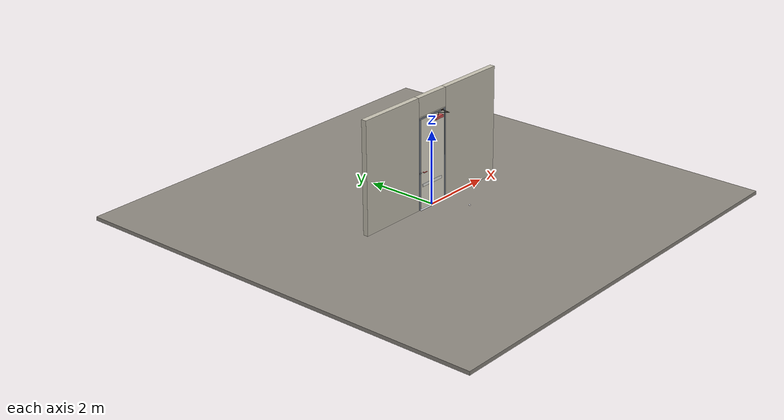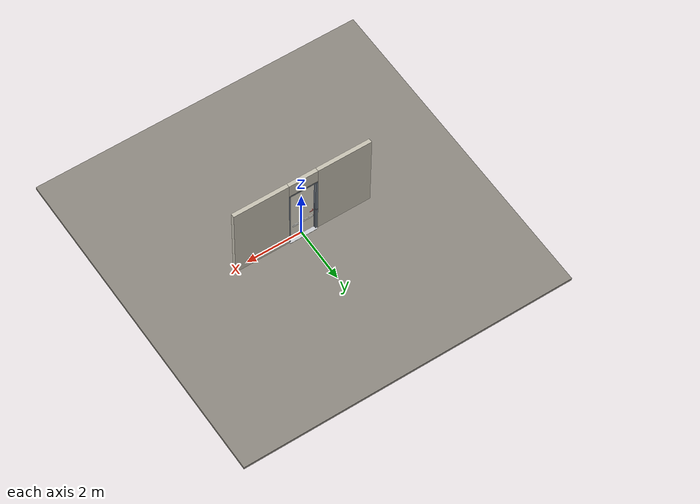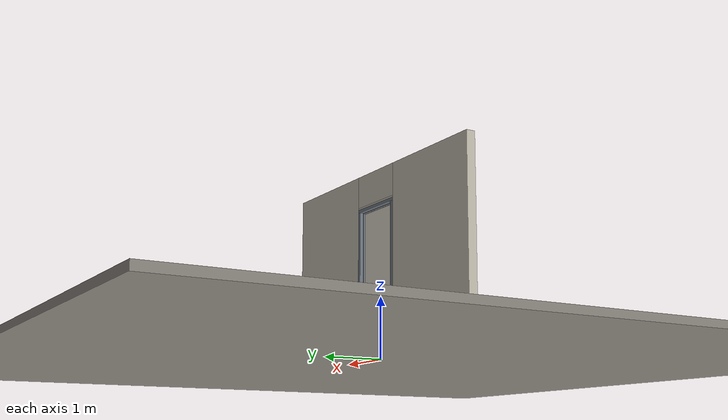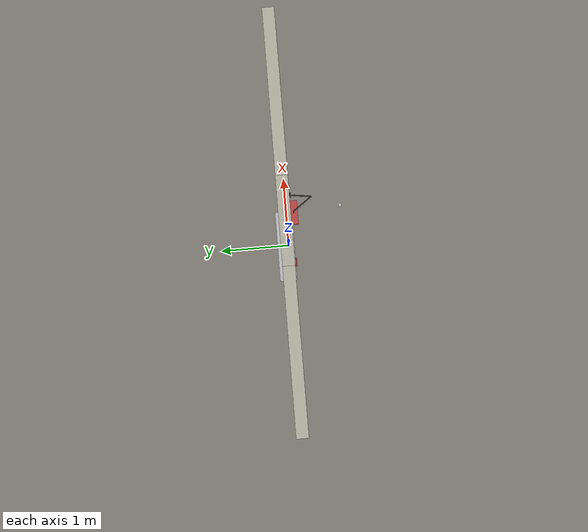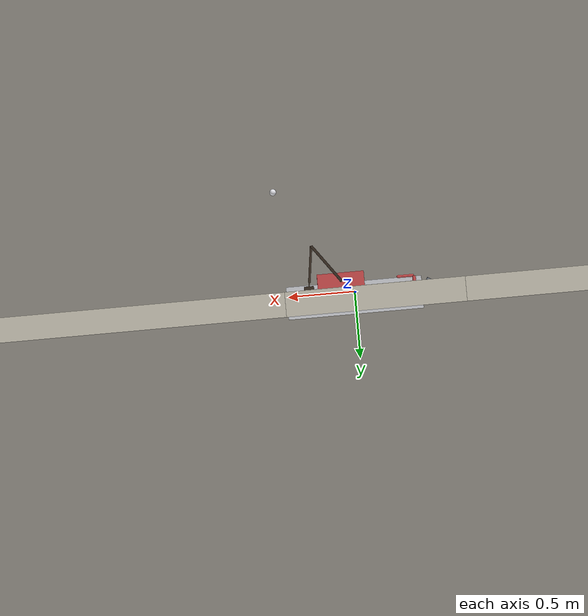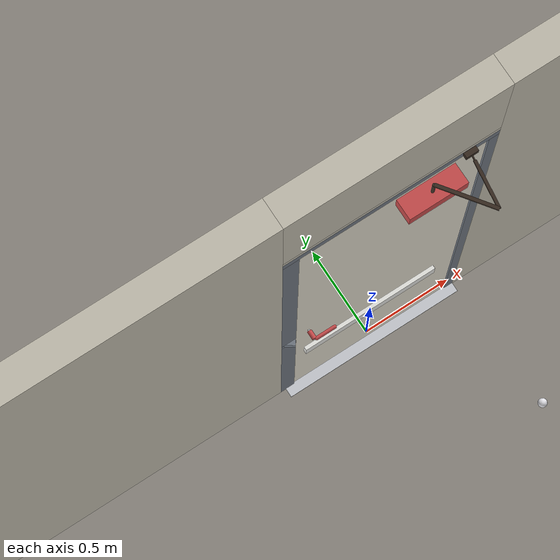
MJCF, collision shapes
<?xml version="1.0" ?>
<mujoco model="db0443_swing_single_full">
  <compiler angle="radian" meshdir="../../hardware" texturedir="../../textures" autolimits="true" inertiafromgeom="false"/>
  <option timestep="0.002" integrator="implicitfast" cone="elliptic" impratio="10" noslip_iterations="3">
    <flag multiccd="enable"/>
  </option>
  <size memory="16M"/>
  <default>
    <geom condim="4" solref="0.005 1" solimp="0.95 0.99 0.001"/>
    <joint solreflimit="0.005 1" solimplimit="0.95 0.99 0.001"/>
    <tendon solreflimit="0.005 1"/>
    <equality solref="0.002 1"/>
  </default>
  <visual>
    <headlight ambient="0.4 0.4 0.4" diffuse="0.7 0.7 0.7" specular="0.2 0.2 0.2"/>
    <quality shadowsize="4096"/>
    <map znear="0.01" zfar="60"/>
  </visual>
  <asset>
    <mesh name="closer_body_fdc4667657" file="closer_body_fdc4667657.obj"/>
    <mesh name="hinge_e22b26c0c1" file="hinge_e22b26c0c1.obj"/>
    <mesh name="hinge_jamb_e1d088f8dc" file="hinge_jamb_e1d088f8dc.obj"/>
    <mesh name="lever_6268dcb28c" file="lever_6268dcb28c.obj"/>
    <material name="mat_floor" rgba="0.55 0.53 0.5 1" specular="0.2" shininess="0.15" reflectance="0"/>
    <material name="mat_wall" rgba="0.78 0.76 0.7 1" specular="0.2" shininess="0.1" reflectance="0"/>
    <material name="mat_leaf" rgba="0.9 0.88 0.82 1" specular="0.23" shininess="0.42" reflectance="0.02"/>
    <material name="mat_hinge" rgba="0.65 0.66 0.68 1" specular="0.74" shininess="0.5" reflectance="0.36"/>
    <material name="mat_op_stainless" rgba="0.75 0.76 0.77 1" specular="0.8" shininess="0.65" reflectance="0.4"/>
    <material name="mat_trim" rgba="0.85 0.66 0.3 1" specular="0.8" shininess="0.75" reflectance="0.4"/>
    <material name="mat_bolt" rgba="0.85 0.66 0.3 1" specular="0.8" shininess="0.75" reflectance="0.4"/>
    <material name="mat_frame" rgba="0.45 0.48 0.52 1" specular="0.32" shininess="0.6" reflectance="0.08"/>
    <material name="mat_seal" rgba="0.1 0.1 0.1 1" specular="0.2" shininess="0.1" reflectance="0"/>
    <material name="mat_threshold" rgba="0.8 0.81 0.83 1" specular="0.8" shininess="0.6" reflectance="0.4"/>
    <material name="mat_closer" rgba="0.22 0.17 0.13 1" specular="0.8" shininess="0.6" reflectance="0.4"/>
    <material name="mat_bumper" rgba="0.92 0.92 0.9 1" specular="0.2" shininess="0.6" reflectance="0"/>
    <material name="mat_stop" rgba="0.9 0.9 0.92 1" specular="0.8" shininess="0.9" reflectance="0.4"/>
    <texture name="skybox" type="skybox" builtin="gradient" rgb1="0.6 0.7 0.85" rgb2="0.9 0.92 0.95" width="256" height="256"/>
  </asset>
  <worldbody>
    <light name="sun" pos="1.5 -2.5 4" dir="-0.3 0.5 -0.8" directional="true" diffuse="0.8 0.8 0.8" specular="0.3 0.3 0.3" castshadow="true"/>
    <light name="fill" pos="-1.5 2.5 3" dir="0.3 -0.5 -0.7" directional="true" diffuse="0.35 0.35 0.4" castshadow="false"/>
    <camera name="robot_view" pos="0 -2.879313 2.043887" xyaxes="1 0 0 0 0.26963 0.962964" fovy="52"/>
    <camera name="far_view" pos="0 2.966312 2.043887" xyaxes="-1 0 0 0 -0.26963 0.962964" fovy="52"/>
    <camera name="iso" pos="-2.221337 -2.411663 2.511538" xyaxes="0.741536 -0.670913 0 0.242917 0.268487 0.932151" fovy="46"/>
    <camera name="detail_handle" pos="-0.1105 -0.877 1.296" xyaxes="0.97561 0.219512 0 -0.070934 0.315262 0.94635" fovy="38"/>
    <geom name="floor" type="box" size="6 6 0.05" pos="0 0 -0.05" material="mat_floor" group="0" contype="1" conaffinity="1" friction="0.8 0.005 0.0001" density="2400"/>
    <geom name="wall_left" type="box" size="0.97975 0.0725 1.5255" pos="-1.52025 0.0435 1.5255" material="mat_wall" group="0" contype="1" conaffinity="1" friction="0.6 0.005 0.0001" density="800"/>
    <geom name="wall_right" type="box" size="0.99475 0.0725 1.5255" pos="1.50525 0.0435 1.5255" material="mat_wall" group="0" contype="1" conaffinity="1" friction="0.6 0.005 0.0001" density="800"/>
    <geom name="wall_header" type="box" size="0.5255 0.0725 0.26" pos="-0.015 0.0435 2.791" material="mat_wall" group="0" contype="1" conaffinity="1" friction="0.6 0.005 0.0001" density="800"/>
    <geom name="hinge_0_jamb" type="mesh" mesh="hinge_jamb_e1d088f8dc" pos="0.4575 -0.029 0.259" quat="0 0 1 0" material="mat_hinge" group="1" contype="0" conaffinity="0" density="7850"/>
    <geom name="hinge_1_jamb" type="mesh" mesh="hinge_jamb_e1d088f8dc" pos="0.4575 -0.029 0.928333" quat="0 0 1 0" material="mat_hinge" group="1" contype="0" conaffinity="0" density="7850"/>
    <geom name="hinge_2_jamb" type="mesh" mesh="hinge_jamb_e1d088f8dc" pos="0.4575 -0.029 1.597667" quat="0 0 1 0" material="mat_hinge" group="1" contype="0" conaffinity="0" density="7850"/>
    <geom name="hinge_3_jamb" type="mesh" mesh="hinge_jamb_e1d088f8dc" pos="0.4575 -0.029 2.267" quat="0 0 1 0" material="mat_hinge" group="1" contype="0" conaffinity="0" density="7850"/>
    <geom name="jamb_hinge" type="box" size="0.025 0.0725 1.2255" pos="0.4855 0.0435 1.2255" material="mat_frame" group="0" contype="1" conaffinity="1" friction="0.6 0.005 0.0001" density="300"/>
    <geom name="strike_1016_wall_n" type="box" size="0.04 0.05325 0.0183" pos="-0.5005 0.06275 1.016" material="mat_frame" group="0" contype="1" conaffinity="1" friction="0.6 0.005 0.0001" density="300"/>
    <geom name="strike_1016_wall_p" type="box" size="0.04 0.008 0.0183" pos="-0.5005 -0.0175 1.016" material="mat_frame" group="0" contype="1" conaffinity="1" friction="0.6 0.005 0.0001" density="300"/>
    <geom name="strike_1016_ramp" type="box" size="0.04 0.018028 0.0183" pos="-0.503782 -0.018312 1.016" quat="0.957092 0 0 -0.289784" material="mat_frame" group="0" contype="1" conaffinity="1" friction="0.12 0.005 0.0001" density="300"/>
    <geom name="strike_1016_back" type="box" size="0.0285 0.0095 0.0183" pos="-0.512 0 1.016" material="mat_frame" group="0" contype="1" conaffinity="1" friction="0.6 0.005 0.0001" density="300"/>
    <geom name="jamb_strike_0" type="box" size="0.04 0.0725 0.49885" pos="-0.5005 0.0435 0.49885" material="mat_frame" group="0" contype="1" conaffinity="1" friction="0.6 0.005 0.0001" density="300"/>
    <geom name="jamb_strike_1" type="box" size="0.04 0.0725 0.70835" pos="-0.5005 0.0435 1.74265" material="mat_frame" group="0" contype="1" conaffinity="1" friction="0.6 0.005 0.0001" density="300"/>
    <geom name="jamb_head" type="box" size="0.5255 0.0725 0.025" pos="-0.015 0.0435 2.476" material="mat_frame" group="0" contype="1" conaffinity="1" friction="0.6 0.005 0.0001" density="300"/>
    <geom name="head_stud" type="box" size="0.5255 0.0725 0.015" pos="-0.015 0.0435 2.516" material="mat_wall" group="0" contype="1" conaffinity="1" friction="0.6 0.005 0.0001" density="500"/>
    <geom name="stop_hinge" type="box" size="0.0055 0.016 1.2255" pos="0.455 0.0385 1.2255" material="mat_frame" group="0" contype="1" conaffinity="1" friction="0.6 0.005 0.0001" density="300"/>
    <geom name="stop_strike" type="box" size="0.0055 0.016 1.2255" pos="-0.455 0.0385 1.2255" material="mat_frame" group="0" contype="1" conaffinity="1" friction="0.6 0.005 0.0001" density="300"/>
    <geom name="stop_head" type="box" size="0.4605 0.016 0.0055" pos="0 0.0385 2.4455" material="mat_frame" group="0" contype="1" conaffinity="1" friction="0.6 0.005 0.0001" density="300"/>
    <geom name="seal_hinge" type="box" size="0.004 0.0025 1.2255" pos="0.4575 0.0245 1.2255" material="mat_seal" group="1" contype="0" conaffinity="0" density="1100"/>
    <geom name="seal_strike" type="box" size="0.004 0.0025 1.2255" pos="-0.4575 0.0245 1.2255" material="mat_seal" group="1" contype="0" conaffinity="0" density="1100"/>
    <geom name="seal_head" type="box" size="0.4405 0.0025 0.008" pos="0 0.0245 2.439" material="mat_seal" group="1" contype="0" conaffinity="0" density="1100"/>
    <geom name="threshold" type="box" size="0.5105 0.1225 0.004" pos="0 0.0435 0.004" material="mat_threshold" group="0" contype="1" conaffinity="1" friction="0.6 0.005 0.0001" density="2700"/>
    <geom name="closer_bracket" type="box" size="0.03 0.012 0.014" pos="0.3605 -0.041 2.481" material="mat_closer" group="1" contype="0" conaffinity="0" density="2700"/>
    <geom name="floor_stop_dome" type="sphere" size="0.025" pos="0.545135 -0.801201 0" material="mat_stop" group="0" contype="1" conaffinity="1" friction="0.6 0.005 0.0001" density="7000"/>
    <site name="approach_point" pos="0 -1.5 0" quat="1 0 0 0" size="0.05" rgba="0.2 0.9 0.2 0.5" group="4"/>
    <site name="goal_point" pos="0 1.5 0" quat="1 0 0 0" size="0.05" rgba="0.2 0.9 0.2 0.5" group="4"/>
    <site name="door_plane_center" pos="0 0 1.2255" quat="1 0 0 0" size="0.02" rgba="0.2 0.9 0.2 0.5" group="4"/>
    <body name="leaf" pos="0.4605 0 0">
      <inertial pos="-0.422933 -0.014851 1.435426" mass="60.164218" quat="0.514002 -0.513152 -0.475468 -0.496394" diaginertia="3.666828091 36.579713173 40.144912245"/>
      <joint name="leaf_hinge" type="hinge" axis="0 0 1" pos="-0.003 -0.029 0" limited="true" range="0 1.658063" solreflimit="0.02 1" damping="12.307281" frictionloss="2.230654" stiffness="16.004621" springref="-1.722003" armature="0.02"/>
      <geom name="leaf_slab" type="box" size="0.457 0.022 1.219" pos="-0.46 0 1.228" material="mat_leaf" group="0" contype="1" conaffinity="1" friction="0.4 0.005 0.0001" density="1"/>
      <geom name="hinge_0" type="mesh" mesh="hinge_e22b26c0c1" pos="-0.003 -0.029 0.259" quat="0 0 1 0" material="mat_hinge" group="1" contype="0" conaffinity="0" density="7850"/>
      <geom name="hinge_1" type="mesh" mesh="hinge_e22b26c0c1" pos="-0.003 -0.029 0.928333" quat="0 0 1 0" material="mat_hinge" group="1" contype="0" conaffinity="0" density="7850"/>
      <geom name="hinge_2" type="mesh" mesh="hinge_e22b26c0c1" pos="-0.003 -0.029 1.597667" quat="0 0 1 0" material="mat_hinge" group="1" contype="0" conaffinity="0" density="7850"/>
      <geom name="hinge_3" type="mesh" mesh="hinge_e22b26c0c1" pos="-0.003 -0.029 2.267" quat="0 0 1 0" material="mat_hinge" group="1" contype="0" conaffinity="0" density="7850"/>
      <geom name="leaf_latch_bolt_faceplate" type="box" size="0.0006 0.014 0.0283" pos="-0.9164 0 1.016" material="mat_bolt" group="1" contype="0" conaffinity="0" density="8500"/>
      <geom name="closer_body" type="mesh" mesh="closer_body_fdc4667657" pos="-0.3 -0.022 2.358" quat="0 0 -0.707107 0.707107" material="mat_closer" group="1" contype="0" conaffinity="0" density="2000"/>
      <geom name="closer_body_col" type="box" size="0.145 0.05 0.035" pos="-0.3 -0.072 2.358" material="mat_closer" group="3" contype="1" conaffinity="1" rgba="0.8 0.3 0.3 0.25" friction="0.6 0.005 0.0001" density="2000"/>
      <geom name="closer_pinion_shaft" type="cylinder" size="0.008 0.0615" pos="-0.3 -0.072 2.4195" material="mat_closer" group="1" contype="0" conaffinity="0" density="2700"/>
      <geom name="bumper_rail_n" type="box" size="0.372 0.01 0.04" pos="-0.495 -0.032 0.659" material="mat_bumper" group="0" contype="1" conaffinity="1" friction="0.6 0.005 0.0001" density="1200"/>
      <geom name="bumper_rail_p" type="box" size="0.372 0.01 0.04" pos="-0.495 0.032 0.659" material="mat_bumper" group="0" contype="1" conaffinity="1" friction="0.6 0.005 0.0001" density="1200"/>
      <site name="leaf_edge_mid" pos="-0.917 0 1.219" quat="1 0 0 0" size="0.02" rgba="0.2 0.9 0.2 0.5" group="4"/>
      <body name="leaf_handle" pos="-0.847 0 1.016">
        <inertial pos="0.035149 0 0" mass="1.038236" quat="0.707107 0 0 -0.707107" diaginertia="0.002348364 0.00382535 0.005606687"/>
        <joint name="leaf_handle_hinge" type="hinge" axis="0 1 0" limited="true" range="0 0.96" damping="0.255791" frictionloss="0.05" stiffness="1.2" springref="-0.583333" armature="0.01"/>
        <geom name="leaf_handle_spindle" type="cylinder" size="0.006 0.03" pos="0 0 0" quat="0.707107 -0.707107 0 0" material="mat_op_stainless" group="1" contype="0" conaffinity="0" density="7850"/>
        <geom name="leaf_handle_lever_n" type="mesh" mesh="lever_6268dcb28c" pos="0 -0.022 0" quat="0 0 -0.707107 0.707107" material="mat_op_stainless" group="1" contype="0" conaffinity="0" density="3000"/>
        <geom name="leaf_handle_lever_col_n" type="capsule" size="0.0095 0.0505" pos="0.06 -0.077 0" quat="0.707107 0 0.707107 0" material="mat_op_stainless" group="3" contype="1" conaffinity="1" rgba="0.8 0.3 0.3 0.25" friction="0.7 0.01 0.0001" density="3000"/>
        <geom name="leaf_handle_hub_col_n" type="cylinder" size="0.012 0.022" pos="0 -0.052 0" quat="0.707107 -0.707107 0 0" material="mat_op_stainless" group="3" contype="1" conaffinity="1" rgba="0.8 0.3 0.3 0.25" friction="0.6 0.005 0.0001" density="3000"/>
        <geom name="leaf_handle_lever_p" type="mesh" mesh="lever_6268dcb28c" pos="0 0.022 0" quat="0 0 0.707107 0.707107" material="mat_op_stainless" group="1" contype="0" conaffinity="0" density="3000"/>
        <geom name="leaf_handle_lever_col_p" type="capsule" size="0.0095 0.0505" pos="0.06 0.077 0" quat="0.707107 0 0.707107 0" material="mat_op_stainless" group="3" contype="1" conaffinity="1" rgba="0.8 0.3 0.3 0.25" friction="0.7 0.01 0.0001" density="3000"/>
        <geom name="leaf_handle_hub_col_p" type="cylinder" size="0.012 0.022" pos="0 0.052 0" quat="0.707107 -0.707107 0 0" material="mat_op_stainless" group="3" contype="1" conaffinity="1" rgba="0.8 0.3 0.3 0.25" friction="0.6 0.005 0.0001" density="3000"/>
        <site name="leaf_handle_grip_n" pos="0.096 -0.077 0" quat="1 0 0 0" size="0.012" rgba="0.2 0.9 0.2 0.5" group="4"/>
        <site name="leaf_handle_grip_p" pos="0.096 0.077 0" quat="1 0 0 0" size="0.012" rgba="0.2 0.9 0.2 0.5" group="4"/>
      </body>
      <body name="leaf_latch_bolt" pos="-0.917 0 1.016">
        <inertial pos="0.0055 0 0" mass="0.074627" quat="0.92388 0.382683 0 0" diaginertia="0.000002271 0.000013255 0.000013255"/>
        <joint name="leaf_latch_bolt_slide" type="slide" axis="1 0 0" limited="true" range="0 0.019" damping="2" frictionloss="0.3" stiffness="600" springref="-0.01" armature="0.1"/>
        <geom name="leaf_latch_bolt_capsule" type="capsule" size="0.008 0.0165" pos="0.0055 0 0" quat="0.707107 0 -0.707107 0" material="mat_bolt" group="0" contype="1" conaffinity="1" friction="0.2 0.005 0.0001" density="8500"/>
      </body>
      <body name="closer_arm_main" pos="-0.3 -0.072 2.481" quat="0.890947 0 0 -0.454107">
        <inertial pos="0.14 0 0" mass="0.12096" quat="1 0 0 0" diaginertia="0.000003588 0.00079128 0.000792852"/>
        <joint name="closer_pinion" type="hinge" axis="0 0 1" limited="false" damping="0.01" armature="0.002"/>
        <geom name="closer_arm_main_geom" type="box" size="0.14 0.008 0.005" pos="0.14 0 0" material="mat_closer" group="1" contype="0" conaffinity="0" density="2700"/>
        <body name="closer_arm_fore" pos="0.28 0 0" quat="0.373215 0 0 0.927745">
          <inertial pos="0.128088 0 0" mass="0.076531" quat="1 0 0 0" diaginertia="0.000001771 0.000437665 0.000438201"/>
          <joint name="closer_elbow" type="hinge" axis="0 0 1" limited="false" damping="0.01" armature="0.002"/>
          <geom name="closer_arm_fore_geom" type="box" size="0.1125 0.007 0.004" pos="0.1125 0 0" material="mat_closer" group="1" contype="0" conaffinity="0" density="2700"/>
          <geom name="closer_fore_neck" type="box" size="0.0175 0.003 0.003" pos="0.2425 0 0" material="mat_closer" group="1" contype="0" conaffinity="0" density="2700"/>
          <geom name="closer_fore_pivot" type="cylinder" size="0.005 0.012" pos="0.26 0 0" material="mat_closer" group="1" contype="0" conaffinity="0" density="2700"/>
        </body>
      </body>
    </body>
  </worldbody>
  <tendon>
    <fixed name="leaf_latch_bolt_coupling" limited="true" range="0 10">
      <joint joint="leaf_latch_bolt_slide" coef="1"/>
      <joint joint="leaf_handle_hinge" coef="-0.020879"/>
    </fixed>
  </tendon>
  <equality>
    <connect name="closer_arm_connect" body1="closer_arm_fore" body2="world" anchor="0.26 0 0" active="true"/>
  </equality>
  <contact>
    <exclude body1="closer_arm_main" body2="leaf"/>
    <exclude body1="closer_arm_fore" body2="leaf"/>
    <exclude body1="closer_arm_main" body2="closer_arm_fore"/>
  </contact>
  <sensor>
    <jointpos name="leaf_hinge_pos" joint="leaf_hinge"/>
    <jointvel name="leaf_hinge_vel" joint="leaf_hinge"/>
    <jointpos name="leaf_handle_hinge_pos" joint="leaf_handle_hinge"/>
    <jointvel name="leaf_handle_hinge_vel" joint="leaf_handle_hinge"/>
    <jointpos name="leaf_latch_bolt_slide_pos" joint="leaf_latch_bolt_slide"/>
    <jointvel name="leaf_latch_bolt_slide_vel" joint="leaf_latch_bolt_slide"/>
  </sensor>
</mujoco>
